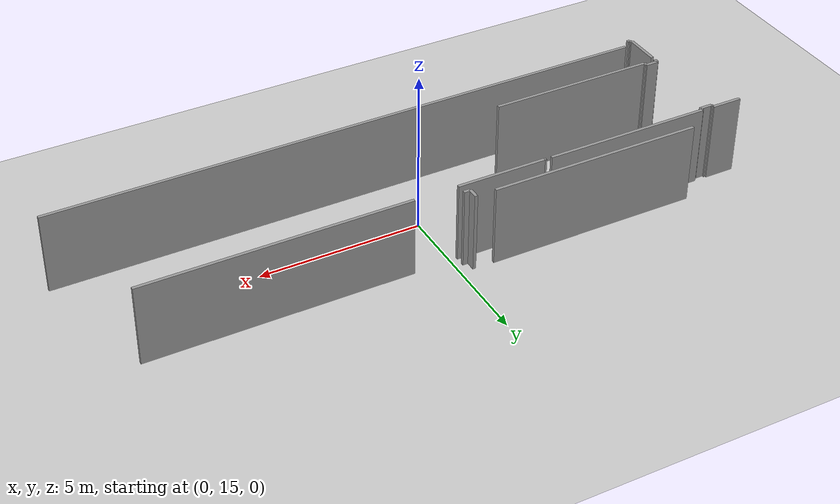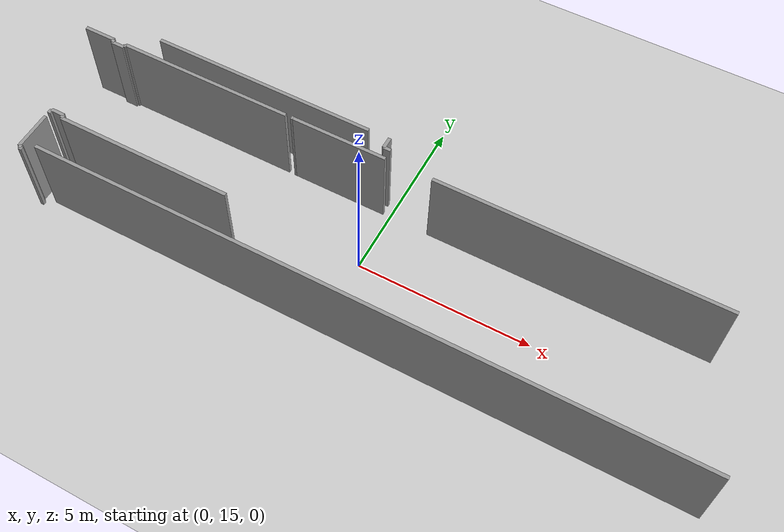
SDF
<sdf version="1.6">
 <world name="default">
  <model name="ground_plane">
   <static>1</static>
   <link name="link">
    <collision name="collision">
     <geometry><plane><normal>0 0 1</normal><size>100 100</size></plane></geometry>
     <surface><friction><ode><mu>100</mu><mu2>50</mu2></ode></friction></surface>
    </collision>
    <visual name="visual">
     <cast_shadows>0</cast_shadows>
     <geometry><plane><normal>0 0 1</normal><size>100 100</size></plane></geometry>
     <material>
      <script><uri>file://media/materials/scripts/gazebo.material</uri><name>Gazebo/Grey</name></script>
     </material>
    </visual>
   </link>
  </model>
  <model name="0510032267_A_40_1_101">
   <static>1</static>
   <link name="Wall_149">
    <collision name="Wall_149_Collision">
     <geometry><box><size>1.11323620051 0.1 2.5</size></box></geometry>
     <pose>0.556618100255 0 1.25 0 0 0</pose>
    </collision>
    <visual name="Wall_149_Visual">
     <pose>0.556618100255 0 1.25 0 0 0</pose>
     <geometry><box><size>1.11323620051 0.1 2.5</size></box></geometry>
     <material>
      <script><uri>file://media/materials/scripts/gazebo.material</uri><name>Gazebo/Grey</name></script>
      <ambient>1 1 1 1</ambient>
     </material>
    </visual>
    <pose>39.0323994942 -19.94433819 0 0 0 -1.57079632679</pose>
   </link>
   <link name="Wall_150">
    <collision name="Wall_150_Collision">
     <geometry><box><size>0.0865426772314 0.1 2.5</size></box></geometry>
     <pose>0.0432713386157 0 1.25 0 0 0</pose>
    </collision>
    <visual name="Wall_150_Visual">
     <pose>0.0432713386157 0 1.25 0 0 0</pose>
     <geometry><box><size>0.0865426772314 0.1 2.5</size></box></geometry>
     <material>
      <script><uri>file://media/materials/scripts/gazebo.material</uri><name>Gazebo/Grey</name></script>
      <ambient>1 1 1 1</ambient>
     </material>
    </visual>
    <pose>39.0323994942 -21.0575743905 0 0 0 0.0</pose>
   </link>
   <link name="Wall_151">
    <collision name="Wall_151_Collision">
     <geometry><box><size>0.0955654820529 0.1 2.5</size></box></geometry>
     <pose>0.0477827410264 0 1.25 0 0 0</pose>
    </collision>
    <visual name="Wall_151_Visual">
     <pose>0.0477827410264 0 1.25 0 0 0</pose>
     <geometry><box><size>0.0955654820529 0.1 2.5</size></box></geometry>
     <material>
      <script><uri>file://media/materials/scripts/gazebo.material</uri><name>Gazebo/Grey</name></script>
      <ambient>1 1 1 1</ambient>
     </material>
    </visual>
    <pose>39.1189421714 -21.0575743905 0 0 0 -1.57079632679</pose>
   </link>
   <link name="Wall_211">
    <collision name="Wall_211_Collision">
     <geometry><box><size>6.57444798533 0.1 2.5</size></box></geometry>
     <pose>3.28722399267 0 1.25 0 0 0</pose>
    </collision>
    <visual name="Wall_211_Visual">
     <pose>3.28722399267 0 1.25 0 0 0</pose>
     <geometry><box><size>6.57444798533 0.1 2.5</size></box></geometry>
     <material>
      <script><uri>file://media/materials/scripts/gazebo.material</uri><name>Gazebo/Grey</name></script>
      <ambient>1 1 1 1</ambient>
     </material>
    </visual>
    <pose>46.7438476544 -16.2322800374 0 0 0 3.14128337923</pose>
   </link>
   <link name="Wall_247">
    <collision name="Wall_247_Collision">
     <geometry><box><size>18.7474821927 0.1 2.5</size></box></geometry>
     <pose>9.37374109633 0 1.25 0 0 0</pose>
    </collision>
    <visual name="Wall_247_Visual">
     <pose>9.37374109633 0 1.25 0 0 0</pose>
     <geometry><box><size>18.7474821927 0.1 2.5</size></box></geometry>
     <material>
      <script><uri>file://media/materials/scripts/gazebo.material</uri><name>Gazebo/Grey</name></script>
      <ambient>1 1 1 1</ambient>
     </material>
    </visual>
    <pose>39.4130093596 -20.8660621811 0 0 0 0.0</pose>
   </link>
   <link name="Wall_280">
    <collision name="Wall_280_Collision">
     <geometry><box><size>0.941167500111 0.1 2.5</size></box></geometry>
     <pose>0.470583750056 0 1.25 0 0 0</pose>
    </collision>
    <visual name="Wall_280_Visual">
     <pose>0.470583750056 0 1.25 0 0 0</pose>
     <geometry><box><size>0.941167500111 0.1 2.5</size></box></geometry>
     <material>
      <script><uri>file://media/materials/scripts/gazebo.material</uri><name>Gazebo/Grey</name></script>
      <ambient>1 1 1 1</ambient>
     </material>
    </visual>
    <pose>38.0870382961 -16.8389683503 0 0 0 0.0</pose>
   </link>
   <link name="Wall_281">
    <collision name="Wall_281_Collision">
     <geometry><box><size>0.100394588859 0.1 2.5</size></box></geometry>
     <pose>0.0501972944294 0 1.25 0 0 0</pose>
    </collision>
    <visual name="Wall_281_Visual">
     <pose>0.0501972944294 0 1.25 0 0 0</pose>
     <geometry><box><size>0.100394588859 0.1 2.5</size></box></geometry>
     <material>
      <script><uri>file://media/materials/scripts/gazebo.material</uri><name>Gazebo/Grey</name></script>
      <ambient>1 1 1 1</ambient>
     </material>
    </visual>
    <pose>39.0282057962 -16.8389683503 0 0 0 -1.57079632679</pose>
   </link>
   <link name="Wall_282">
    <collision name="Wall_282_Collision">
     <geometry><box><size>0.386963953259 0.1 2.5</size></box></geometry>
     <pose>0.19348197663 0 1.25 0 0 0</pose>
    </collision>
    <visual name="Wall_282_Visual">
     <pose>0.19348197663 0 1.25 0 0 0</pose>
     <geometry><box><size>0.386963953259 0.1 2.5</size></box></geometry>
     <material>
      <script><uri>file://media/materials/scripts/gazebo.material</uri><name>Gazebo/Grey</name></script>
      <ambient>1 1 1 1</ambient>
     </material>
    </visual>
    <pose>39.0282057962 -16.9393629391 0 0 0 0.0</pose>
   </link>
   <link name="Wall_283">
    <collision name="Wall_283_Collision">
     <geometry><box><size>0.0955654820529 0.1 2.5</size></box></geometry>
     <pose>0.0477827410264 0 1.25 0 0 0</pose>
    </collision>
    <visual name="Wall_283_Visual">
     <pose>0.0477827410264 0 1.25 0 0 0</pose>
     <geometry><box><size>0.0955654820529 0.1 2.5</size></box></geometry>
     <material>
      <script><uri>file://media/materials/scripts/gazebo.material</uri><name>Gazebo/Grey</name></script>
      <ambient>1 1 1 1</ambient>
     </material>
    </visual>
    <pose>39.4151697495 -16.9393629391 0 0 0 1.57079632679</pose>
   </link>
   <link name="Wall_284">
    <collision name="Wall_284_Collision">
     <geometry><box><size>5.1564694146 0.1 2.5</size></box></geometry>
     <pose>2.5782347073 0 1.25 0 0 0</pose>
    </collision>
    <visual name="Wall_284_Visual">
     <pose>2.5782347073 0 1.25 0 0 0</pose>
     <geometry><box><size>5.1564694146 0.1 2.5</size></box></geometry>
     <material>
      <script><uri>file://media/materials/scripts/gazebo.material</uri><name>Gazebo/Grey</name></script>
      <ambient>1 1 1 1</ambient>
     </material>
    </visual>
    <pose>39.4151697495 -16.8437974571 0 0 0 0.0</pose>
   </link>
   <link name="Wall_285">
    <collision name="Wall_285_Collision">
     <geometry><box><size>5.13766131441 0.1 2.5</size></box></geometry>
     <pose>2.5688306572 0 1.25 0 0 0</pose>
    </collision>
    <visual name="Wall_285_Visual">
     <pose>2.5688306572 0 1.25 0 0 0</pose>
     <geometry><box><size>5.13766131441 0.1 2.5</size></box></geometry>
     <material>
      <script><uri>file://media/materials/scripts/gazebo.material</uri><name>Gazebo/Grey</name></script>
      <ambient>1 1 1 1</ambient>
     </material>
    </visual>
    <pose>44.5716391641 -19.7887901181 0 0 0 3.14159265359</pose>
   </link>
   <link name="Wall_286">
    <collision name="Wall_286_Collision">
     <geometry><box><size>0.106621595003 0.1 2.5</size></box></geometry>
     <pose>0.0533107975016 0 1.25 0 0 0</pose>
    </collision>
    <visual name="Wall_286_Visual">
     <pose>0.0533107975016 0 1.25 0 0 0</pose>
     <geometry><box><size>0.106621595003 0.1 2.5</size></box></geometry>
     <material>
      <script><uri>file://media/materials/scripts/gazebo.material</uri><name>Gazebo/Grey</name></script>
      <ambient>1 1 1 1</ambient>
     </material>
    </visual>
    <pose>39.4339778496 -19.7887901181 0 0 0 1.57079632679</pose>
   </link>
   <link name="Wall_287">
    <collision name="Wall_287_Collision">
     <geometry><box><size>0.395605512807 0.1 2.5</size></box></geometry>
     <pose>0.197802756403 0 1.25 0 0 0</pose>
    </collision>
    <visual name="Wall_287_Visual">
     <pose>0.197802756403 0 1.25 0 0 0</pose>
     <geometry><box><size>0.395605512807 0.1 2.5</size></box></geometry>
     <material>
      <script><uri>file://media/materials/scripts/gazebo.material</uri><name>Gazebo/Grey</name></script>
      <ambient>1 1 1 1</ambient>
     </material>
    </visual>
    <pose>39.4339778496 -19.6821685231 0 0 0 3.14159265359</pose>
   </link>
   <link name="Wall_288">
    <collision name="Wall_288_Collision">
     <geometry><box><size>0.130131720242 0.1 2.5</size></box></geometry>
     <pose>0.0650658601211 0 1.25 0 0 0</pose>
    </collision>
    <visual name="Wall_288_Visual">
     <pose>0.0650658601211 0 1.25 0 0 0</pose>
     <geometry><box><size>0.130131720242 0.1 2.5</size></box></geometry>
     <material>
      <script><uri>file://media/materials/scripts/gazebo.material</uri><name>Gazebo/Grey</name></script>
      <ambient>1 1 1 1</ambient>
     </material>
    </visual>
    <pose>39.0383723368 -19.6821685231 0 0 0 -1.57079632679</pose>
   </link>
   <link name="Wall_559">
    <collision name="Wall_559_Collision">
     <geometry><box><size>2.76186784768 0.1 2.5</size></box></geometry>
     <pose>1.38093392384 0 1.25 0 0 0</pose>
    </collision>
    <visual name="Wall_559_Visual">
     <pose>1.38093392384 0 1.25 0 0 0</pose>
     <geometry><box><size>2.76186784768 0.1 2.5</size></box></geometry>
     <material>
      <script><uri>file://media/materials/scripts/gazebo.material</uri><name>Gazebo/Grey</name></script>
      <ambient>1 1 1 1</ambient>
     </material>
    </visual>
    <pose>44.8066133347 -16.8460849287 0 0 0 0.0</pose>
   </link>
   <link name="Wall_560">
    <collision name="Wall_560_Collision">
     <geometry><box><size>8.10235164793 0.1 2.5</size></box></geometry>
     <pose>4.05117582397 0 1.25 0 0 0</pose>
    </collision>
    <visual name="Wall_560_Visual">
     <pose>4.05117582397 0 1.25 0 0 0</pose>
     <geometry><box><size>8.10235164793 0.1 2.5</size></box></geometry>
     <material>
      <script><uri>file://media/materials/scripts/gazebo.material</uri><name>Gazebo/Grey</name></script>
      <ambient>1 1 1 1</ambient>
     </material>
    </visual>
    <pose>48.9178352893 -16.8460849287 0 0 0 0.0</pose>
   </link>
   <link name="Wall_579">
    <collision name="Wall_579_Collision">
     <geometry><box><size>0.0626930519278 0.1 2.5</size></box></geometry>
     <pose>0.0313465259639 0 1.25 0 0 0</pose>
    </collision>
    <visual name="Wall_579_Visual">
     <pose>0.0313465259639 0 1.25 0 0 0</pose>
     <geometry><box><size>0.0626930519278 0.1 2.5</size></box></geometry>
     <material>
      <script><uri>file://media/materials/scripts/gazebo.material</uri><name>Gazebo/Grey</name></script>
      <ambient>1 1 1 1</ambient>
     </material>
    </visual>
    <pose>44.743962028 -16.8437974571 0 0 0 -0.0364949452418</pose>
   </link>
   <link name="Wall_588">
    <collision name="Wall_588_Collision">
     <geometry><box><size>0.205364121007 0.1 2.5</size></box></geometry>
     <pose>0.102682060504 0 1.25 0 0 0</pose>
    </collision>
    <visual name="Wall_588_Visual">
     <pose>0.102682060504 0 1.25 0 0 0</pose>
     <geometry><box><size>0.205364121007 0.1 2.5</size></box></geometry>
     <material>
      <script><uri>file://media/materials/scripts/gazebo.material</uri><name>Gazebo/Grey</name></script>
      <ambient>1 1 1 1</ambient>
     </material>
    </visual>
    <pose>47.5607291951 -16.542867854 0 0 0 3.14159265359</pose>
   </link>
   <link name="Wall_589">
    <collision name="Wall_589_Collision">
     <geometry><box><size>0.333464494552 0.1 2.5</size></box></geometry>
     <pose>0.166732247276 0 1.25 0 0 0</pose>
    </collision>
    <visual name="Wall_589_Visual">
     <pose>0.166732247276 0 1.25 0 0 0</pose>
     <geometry><box><size>0.333464494552 0.1 2.5</size></box></geometry>
     <material>
      <script><uri>file://media/materials/scripts/gazebo.material</uri><name>Gazebo/Grey</name></script>
      <ambient>1 1 1 1</ambient>
     </material>
    </visual>
    <pose>47.3553650741 -16.542867854 0 0 0 1.5673664622</pose>
   </link>
   <pose>-47.8 33.6752466975 0 0 0 0</pose>
  </model>
 </world>
</sdf>
